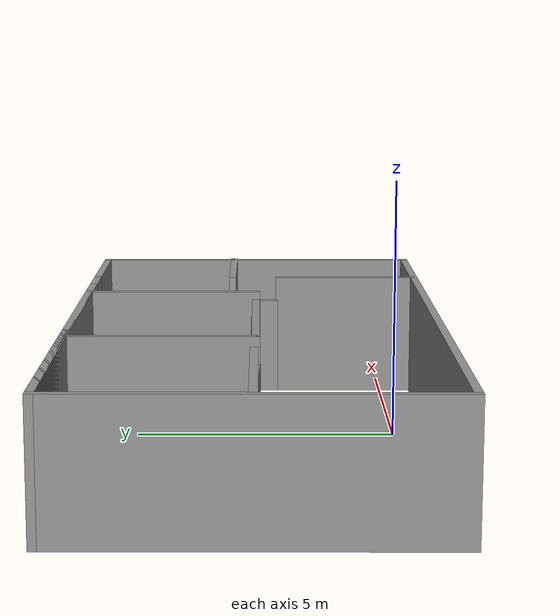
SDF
<?xml version='1.0'?>
<sdf version='1.7'>
  <model name='map2'>
    <pose>-0.278714 2.705 0 0 -0 0</pose>
    <link name='Door_3'>
      <collision name='Door_3_Collision'>
        <geometry>
          <box>
            <size>0.9 0.17 2</size>
          </box>
        </geometry>
        <pose>0 0 1 0 -0 0</pose>
      </collision>
      <visual name='Door_3_Visual'>
        <pose>0 0 1 0 -0 0</pose>
        <geometry>
          <box>
            <size>0.9 0.17 2</size>
          </box>
        </geometry>
        <material>
          <script>
            <uri>file://media/materials/scripts/gazebo.material</uri>
            <name>Gazebo/Grey</name>
          </script>
        </material>
      </visual>
      <pose>-2.85619 -0.001636 0 0 -0 3.10908</pose>
    </link>
    <link name='Door_4'>
      <collision name='Door_4_Collision'>
        <geometry>
          <box>
            <size>0.9 0.17 2</size>
          </box>
        </geometry>
        <pose>0 0 1 0 -0 0</pose>
      </collision>
      <visual name='Door_4_Visual'>
        <pose>0 0 1 0 -0 0</pose>
        <geometry>
          <box>
            <size>0.9 0.17 2</size>
          </box>
        </geometry>
        <material>
          <script>
            <uri>file://media/materials/scripts/gazebo.material</uri>
            <name>Gazebo/Grey</name>
          </script>
        </material>
      </visual>
      <pose>1.83869 -0.001636 0 0 -0 -3.13242</pose>
    </link>
    <link name='Door_5'>
      <collision name='Door_5_Collision'>
        <geometry>
          <box>
            <size>0.9 0.17 2</size>
          </box>
        </geometry>
        <pose>0 0 1 0 -0 0</pose>
      </collision>
      <visual name='Door_5_Visual'>
        <pose>0 0 1 0 -0 0</pose>
        <geometry>
          <box>
            <size>0.9 0.17 2</size>
          </box>
        </geometry>
        <material>
          <script>
            <uri>file://media/materials/scripts/gazebo.material</uri>
            <name>Gazebo/Grey</name>
          </script>
        </material>
      </visual>
      <pose>4.23241 -0.028086 0 0 -0 1.57723</pose>
    </link>
    <link name='Wall_13'>
      <collision name='Wall_13_Collision'>
        <geometry>
          <box>
            <size>3.5 0.15 2.5</size>
          </box>
        </geometry>
        <pose>0 0 1.25 0 -0 0</pose>
      </collision>
      <visual name='Wall_13_Visual'>
        <pose>0 0 1.25 0 -0 0</pose>
        <geometry>
          <box>
            <size>3.5 0.15 2.5</size>
          </box>
        </geometry>
        <material>
          <script>
            <uri>file://media/materials/scripts/gazebo.material</uri>
            <name>Gazebo/Grey</name>
          </script>
          <ambient>1 1 1 1</ambient>
        </material>
        <meta>
          <layer>0</layer>
        </meta>
      </visual>
      <pose>2.36769 1.65606 0 0 -0 -1.5708</pose>
    </link>
    <link name='Wall_16'>
      <collision name='Wall_16_Collision'>
        <geometry>
          <box>
            <size>3.5 0.15 2.5</size>
          </box>
        </geometry>
        <pose>0 0 1.25 0 -0 0</pose>
      </collision>
      <visual name='Wall_16_Visual'>
        <pose>0 0 1.25 0 -0 0</pose>
        <geometry>
          <box>
            <size>3.5 0.15 2.5</size>
          </box>
        </geometry>
        <material>
          <script>
            <uri>file://media/materials/scripts/gazebo.material</uri>
            <name>Gazebo/Grey</name>
          </script>
          <ambient>1 1 1 1</ambient>
        </material>
        <meta>
          <layer>0</layer>
        </meta>
      </visual>
      <pose>-2.34041 1.65606 0 0 -0 -1.5708</pose>
    </link>
    <link name='Wall_18'>
      <collision name='Wall_18_Collision'>
        <geometry>
          <box>
            <size>3.5 0.15 2.5</size>
          </box>
        </geometry>
        <pose>0 0 1.25 0 -0 0</pose>
      </collision>
      <visual name='Wall_18_Visual'>
        <pose>0 0 1.25 0 -0 0</pose>
        <geometry>
          <box>
            <size>3.5 0.15 2.5</size>
          </box>
        </geometry>
        <material>
          <script>
            <uri>file://media/materials/scripts/gazebo.material</uri>
            <name>Gazebo/Grey</name>
          </script>
          <ambient>1 1 1 1</ambient>
        </material>
        <meta>
          <layer>0</layer>
        </meta>
      </visual>
      <pose>-5.06019 0.011589 0 0 -0 3.14159</pose>
    </link>
    <link name='Wall_2'>
      <pose>-0.011286 3.425 0 0 -0 3.14159</pose>
      <visual name='Wall_2_Visual_0'>
        <pose>-5.57275 0 1.25 0 -0 0</pose>
        <geometry>
          <box>
            <size>2.6045 0.15 2.5</size>
          </box>
        </geometry>
        <material>
          <script>
            <uri>file://media/materials/scripts/gazebo.material</uri>
            <name>Gazebo/Grey</name>
          </script>
          <ambient>1 1 1 1</ambient>
        </material>
        <meta>
          <layer>0</layer>
        </meta>
      </visual>
      <collision name='Wall_2_Collision_0'>
        <geometry>
          <box>
            <size>2.6045 0.15 2.5</size>
          </box>
        </geometry>
        <pose>-5.57275 0 1.25 0 -0 0</pose>
      </collision>
      <visual name='Wall_2_Visual_1'>
        <pose>1.75225 0 1.25 0 -0 0</pose>
        <geometry>
          <box>
            <size>10.2455 0.15 2.5</size>
          </box>
        </geometry>
        <material>
          <script>
            <uri>file://media/materials/scripts/gazebo.material</uri>
            <name>Gazebo/Grey</name>
          </script>
          <ambient>1 1 1 1</ambient>
        </material>
        <meta>
          <layer>0</layer>
        </meta>
      </visual>
      <collision name='Wall_2_Collision_1'>
        <geometry>
          <box>
            <size>10.2455 0.15 2.5</size>
          </box>
        </geometry>
        <pose>1.75225 0 1.25 0 -0 0</pose>
      </collision>
      <visual name='Wall_2_Visual_2'>
        <pose>2.2019 0 1.25 0 -0 0</pose>
        <geometry>
          <box>
            <size>9.3462 0.15 2.5</size>
          </box>
        </geometry>
        <material>
          <script>
            <uri>file://media/materials/scripts/gazebo.material</uri>
            <name>Gazebo/Grey</name>
          </script>
          <ambient>1 1 1 1</ambient>
        </material>
        <meta>
          <layer>0</layer>
        </meta>
      </visual>
      <collision name='Wall_2_Collision_2'>
        <geometry>
          <box>
            <size>9.3462 0.15 2.5</size>
          </box>
        </geometry>
        <pose>2.2019 0 1.25 0 -0 0</pose>
      </collision>
      <visual name='Wall_2_Visual_3'>
        <pose>-3.82085 0 2.25 0 -0 0</pose>
        <geometry>
          <box>
            <size>0.8993 0.15 0.5</size>
          </box>
        </geometry>
        <material>
          <script>
            <uri>file://media/materials/scripts/gazebo.material</uri>
            <name>Gazebo/Grey</name>
          </script>
          <ambient>1 1 1 1</ambient>
        </material>
        <meta>
          <layer>0</layer>
        </meta>
      </visual>
      <collision name='Wall_2_Collision_3'>
        <geometry>
          <box>
            <size>0.8993 0.15 0.5</size>
          </box>
        </geometry>
        <pose>-3.82085 0 2.25 0 -0 0</pose>
      </collision>
    </link>
    <link name='Wall_20'>
      <collision name='Wall_20_Collision'>
        <geometry>
          <box>
            <size>3.75 0.15 2.5</size>
          </box>
        </geometry>
        <pose>0 0 1.25 0 -0 0</pose>
      </collision>
      <visual name='Wall_20_Visual'>
        <pose>0 0 1.25 0 -0 0</pose>
        <geometry>
          <box>
            <size>3.75 0.15 2.5</size>
          </box>
        </geometry>
        <material>
          <script>
            <uri>file://media/materials/scripts/gazebo.material</uri>
            <name>Gazebo/Grey</name>
          </script>
          <ambient>1 1 1 1</ambient>
        </material>
        <meta>
          <layer>0</layer>
        </meta>
      </visual>
      <pose>-0.490314 -0.014861 0 0 -0 3.14159</pose>
    </link>
    <link name='Wall_22'>
      <collision name='Wall_22_Collision'>
        <geometry>
          <box>
            <size>2.75 0.15 2.5</size>
          </box>
        </geometry>
        <pose>0 0 1.25 0 -0 0</pose>
      </collision>
      <visual name='Wall_22_Visual'>
        <pose>0 0 1.25 0 -0 0</pose>
        <geometry>
          <box>
            <size>2.75 0.15 2.5</size>
          </box>
        </geometry>
        <material>
          <script>
            <uri>file://media/materials/scripts/gazebo.material</uri>
            <name>Gazebo/Grey</name>
          </script>
          <ambient>1 1 1 1</ambient>
        </material>
        <meta>
          <layer>0</layer>
        </meta>
      </visual>
      <pose>5.51129 0.500914 0 0 -0 3.14159</pose>
    </link>
    <link name='Wall_24'>
      <collision name='Wall_24_Collision'>
        <geometry>
          <box>
            <size>3 0.15 2.5</size>
          </box>
        </geometry>
        <pose>0 0 1.25 0 -0 0</pose>
      </collision>
      <visual name='Wall_24_Visual'>
        <pose>0 0 1.25 0 -0 0</pose>
        <geometry>
          <box>
            <size>3 0.15 2.5</size>
          </box>
        </geometry>
        <material>
          <script>
            <uri>file://media/materials/scripts/gazebo.material</uri>
            <name>Gazebo/Grey</name>
          </script>
          <ambient>1 1 1 1</ambient>
        </material>
        <meta>
          <layer>0</layer>
        </meta>
      </visual>
      <pose>4.23241 -1.93579 0 0 -0 1.5708</pose>
    </link>
    <link name='Wall_3'>
      <collision name='Wall_3_Collision'>
        <geometry>
          <box>
            <size>7 0.15 2.5</size>
          </box>
        </geometry>
        <pose>0 0 1.25 0 -0 0</pose>
      </collision>
      <visual name='Wall_3_Visual'>
        <pose>0 0 1.25 0 -0 0</pose>
        <geometry>
          <box>
            <size>7 0.15 2.5</size>
          </box>
        </geometry>
        <material>
          <script>
            <uri>file://media/materials/scripts/gazebo.material</uri>
            <name>Gazebo/Grey</name>
          </script>
          <ambient>1 1 1 1</ambient>
        </material>
        <meta>
          <layer>0</layer>
        </meta>
      </visual>
      <pose>-6.81129 0 0 0 -0 -1.5708</pose>
    </link>
    <link name='Wall_6'>
      <collision name='Wall_6_Collision'>
        <geometry>
          <box>
            <size>13.75 0.15 2.5</size>
          </box>
        </geometry>
        <pose>0 0 1.25 0 -0 0</pose>
      </collision>
      <visual name='Wall_6_Visual'>
        <pose>0 0 1.25 0 -0 0</pose>
        <geometry>
          <box>
            <size>13.75 0.15 2.5</size>
          </box>
        </geometry>
        <material>
          <script>
            <uri>file://media/materials/scripts/gazebo.material</uri>
            <name>Gazebo/Grey</name>
          </script>
          <ambient>1 1 1 1</ambient>
        </material>
        <meta>
          <layer>0</layer>
        </meta>
      </visual>
      <pose>-0.011286 -3.425 0 0 -0 0</pose>
    </link>
    <link name='Wall_7'>
      <collision name='Wall_7_Collision'>
        <geometry>
          <box>
            <size>7 0.15 2.5</size>
          </box>
        </geometry>
        <pose>0 0 1.25 0 -0 0</pose>
      </collision>
      <visual name='Wall_7_Visual'>
        <pose>0 0 1.25 0 -0 0</pose>
        <geometry>
          <box>
            <size>7 0.15 2.5</size>
          </box>
        </geometry>
        <material>
          <script>
            <uri>file://media/materials/scripts/gazebo.material</uri>
            <name>Gazebo/Grey</name>
          </script>
          <ambient>1 1 1 1</ambient>
        </material>
        <meta>
          <layer>0</layer>
        </meta>
      </visual>
      <pose>6.78871 0 0 0 -0 1.5708</pose>
    </link>
    <static>1</static>
  </model>
</sdf>
